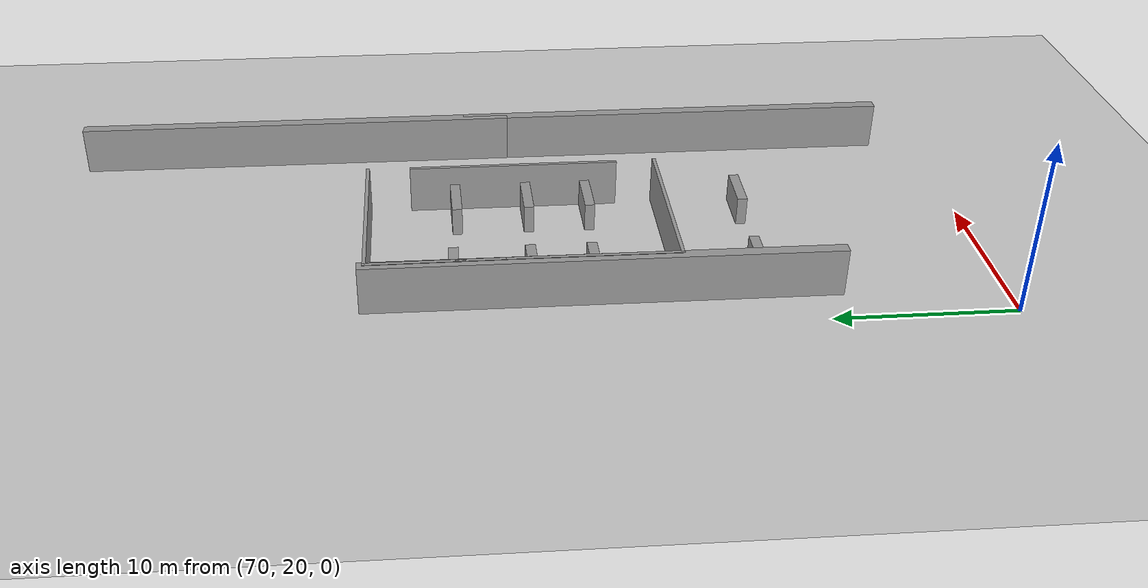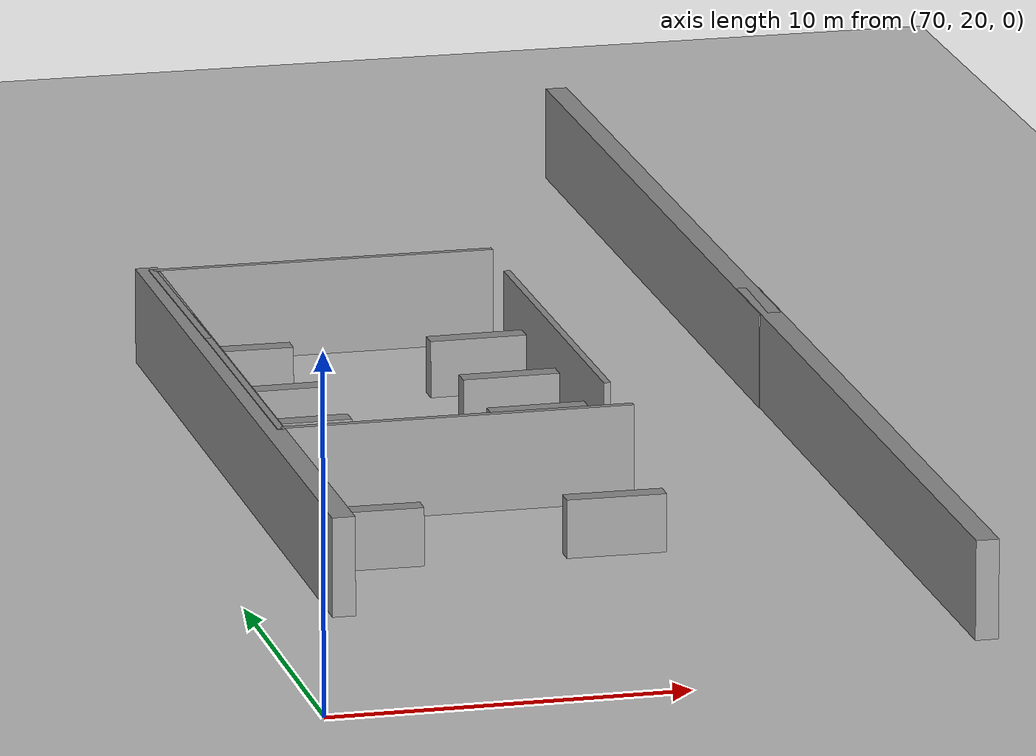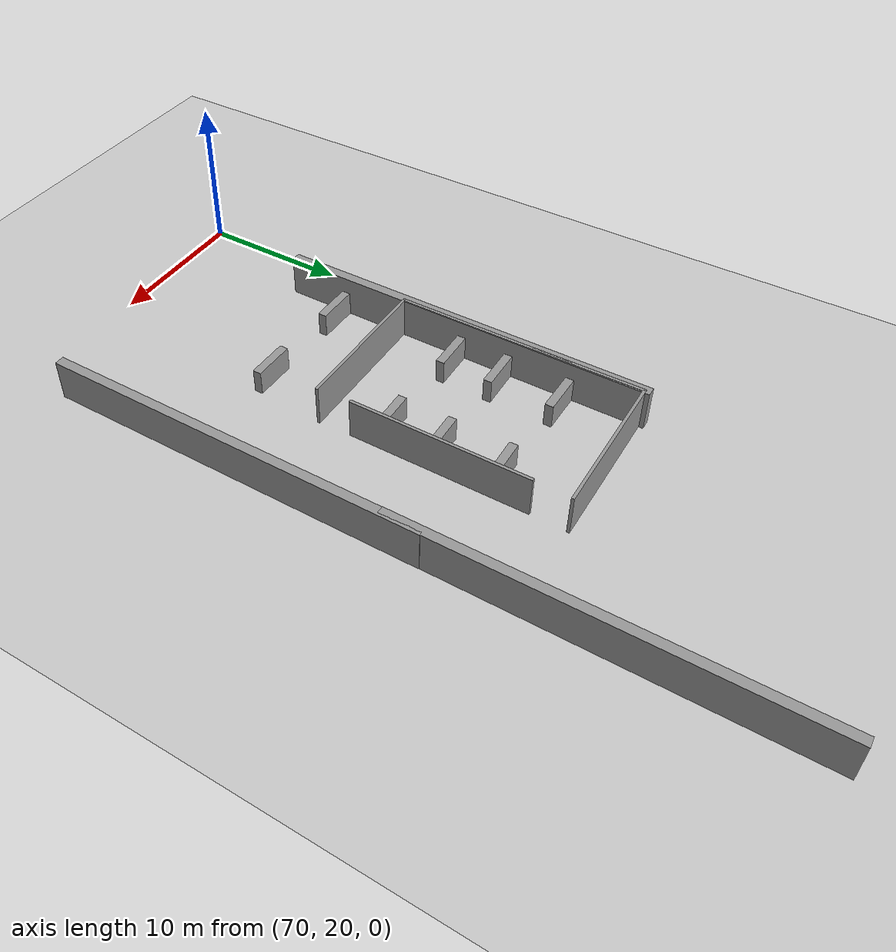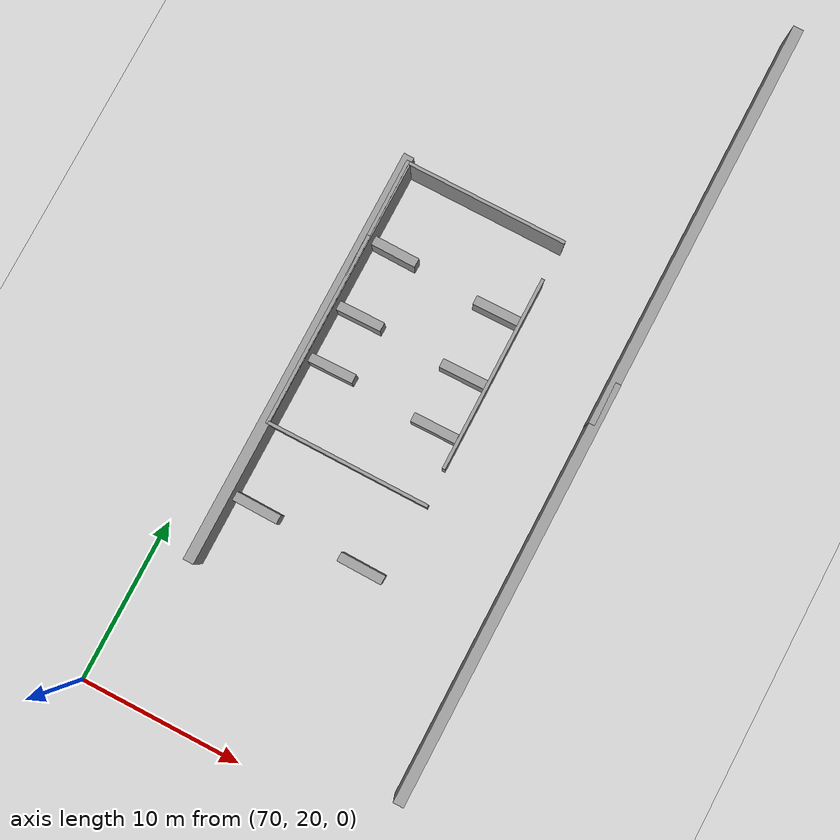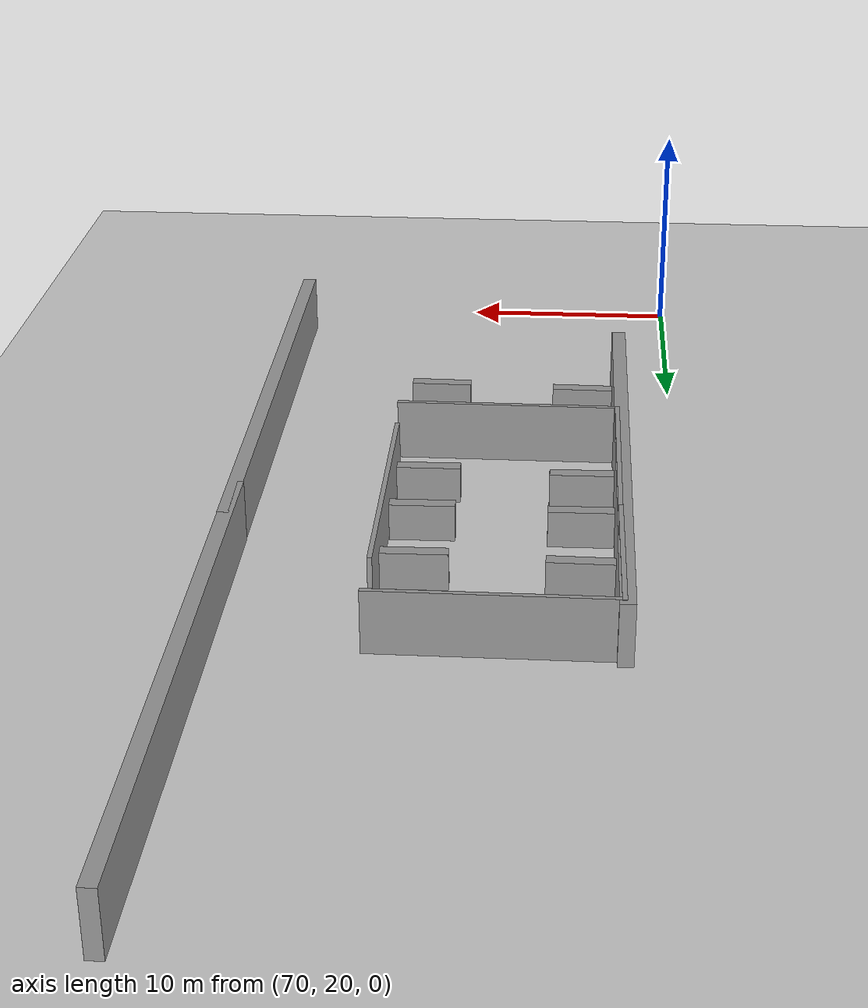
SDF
<sdf version="1.7">
 <world name="default">
  <model name="ground_plane">
   <static>1</static>
   <link name="link">
    <collision name="collision">
     <geometry><plane><normal>0 0 1</normal><size>100 100</size></plane></geometry>
     <surface><friction><ode><mu>100</mu><mu2>50</mu2></ode></friction></surface>
    </collision>
    <visual name="visual">
     <cast_shadows>0</cast_shadows>
     <geometry><plane><normal>0 0 1</normal><size>100 100</size></plane></geometry>
     <material>
      <script><uri>file://media/materials/scripts/gazebo.material</uri><name>Gazebo/Grey</name></script>
     </material>
    </visual>
   </link>
  </model>
  <model name="grew_wall_long_vertial_1_clone_clone_3">
   <model name="grey_wall_long">
    <link name="link">
     <pose>0 0 1.37589 0 -0 0</pose>
     <inertial>
      <inertia><ixx>0</ixx><ixy>0</ixy><ixz>0</ixz><iyy>0</iyy><iyz>0</iyz><izz>0</izz></inertia>
      <mass>0</mass>
     </inertial>
     <visual name="visual">
      <cast_shadows>0</cast_shadows>
      <geometry><box><size>25.8815 0.642976 2.8</size></box></geometry>
      <material>
       <script>
        <uri>model://grey_wall/materials/scripts</uri>
        <uri>model://grey_wall/materials/textures</uri>
        <name>vrc/grey_wall</name>
       </script>
       <shader type="pixel"><normal_map>__default__</normal_map></shader>
       <ambient>1 1 1 1</ambient>
       <diffuse>1 1 1 1</diffuse>
       <specular>0 0 0 1</specular>
       <emissive>0 0 0 1</emissive>
      </material>
     </visual>
     <collision name="collision">
      <geometry><box><size>25.8815 0.642976 2.8</size></box></geometry>
      <surface>
       <friction>
        <ode><mu>1</mu><mu2>1</mu2><fdir1>0 0 0</fdir1><slip1>0</slip1><slip2>0</slip2></ode>
        <torsional>
         <coefficient>1</coefficient>
         <patch_radius>0</patch_radius>
         <surface_radius>0</surface_radius>
         <use_patch_radius>1</use_patch_radius>
         <ode><slip>0</slip></ode>
        </torsional>
       </friction>
       <bounce><restitution_coefficient>0</restitution_coefficient><threshold>1e+06</threshold></bounce>
       <contact>
        <collide_without_contact>0</collide_without_contact>
        <collide_without_contact_bitmask>1</collide_without_contact_bitmask>
        <collide_bitmask>1</collide_bitmask>
        <ode>
         <soft_cfm>0</soft_cfm>
         <soft_erp>0.2</soft_erp>
         <kp>1e+13</kp>
         <kd>1</kd>
         <max_vel>0.01</max_vel>
         <min_depth>0</min_depth>
        </ode>
        <bullet>
         <split_impulse>1</split_impulse>
         <split_impulse_penetration_threshold>-0.01</split_impulse_penetration_threshold>
         <soft_cfm>0</soft_cfm>
         <soft_erp>0.2</soft_erp>
         <kp>1e+13</kp>
         <kd>1</kd>
        </bullet>
       </contact>
      </surface>
     </collision>
    </link>
    <static>1</static>
    <pose>1e-06 -0 0 0 -0 1.57003</pose>
   </model>
   <static>0</static>
   <pose>72.5178 41.7329 0 0 -0 0</pose>
  </model>
  <model name="jiaoshi_clone_clone_clone_0_clone">
   <model name="grey_wall">
    <static>1</static>
    <link name="link">
     <pose>0 0 1.4 0 -0 0</pose>
     <collision name="collision"><geometry><box><size>7.5 0.2 2.8</size></box></geometry></collision>
     <visual name="visual">
      <cast_shadows>0</cast_shadows>
      <geometry><box><size>7.5 0.2 2.8</size></box></geometry>
      <material>
       <script>
        <uri>model://grey_wall/materials/scripts</uri>
        <uri>model://grey_wall/materials/textures</uri>
        <name>vrc/grey_wall</name>
       </script>
      </material>
     </visual>
    </link>
    <pose>-3.38172 4.2623 0 0 0 -1.56473</pose>
   </model>
   <model name="grey_wall_10m">
    <link name="link">
     <pose>1.25079 -0.023082 1.4 0 -0 0</pose>
     <inertial>
      <inertia><ixx>0</ixx><ixy>0</ixy><ixz>0</ixz><iyy>0</iyy><iyz>0</iyz><izz>0</izz></inertia>
      <mass>0</mass>
     </inertial>
     <visual name="visual">
      <cast_shadows>0</cast_shadows>
      <geometry><box><size>10.0157 0.2 2.8</size></box></geometry>
      <material>
       <script>
        <uri>model://grey_wall/materials/scripts</uri>
        <uri>model://grey_wall/materials/textures</uri>
        <name>vrc/grey_wall</name>
       </script>
       <shader type="pixel"/>
       <ambient>1 1 1 1</ambient>
       <diffuse>1 1 1 1</diffuse>
       <specular>0 0 0 1</specular>
       <emissive>0 0 0 1</emissive>
      </material>
     </visual>
     <collision name="collision">
      <geometry><box><size>10.0157 0.2 2.8</size></box></geometry>
      <surface>
       <friction>
        <ode><mu>1</mu><mu2>1</mu2><fdir1>0 0 0</fdir1><slip1>0</slip1><slip2>0</slip2></ode>
        <torsional>
         <coefficient>1</coefficient>
         <patch_radius>0</patch_radius>
         <surface_radius>0</surface_radius>
         <use_patch_radius>1</use_patch_radius>
         <ode><slip>0</slip></ode>
        </torsional>
       </friction>
       <bounce><restitution_coefficient>0</restitution_coefficient><threshold>1e+06</threshold></bounce>
       <contact>
        <collide_without_contact>0</collide_without_contact>
        <collide_without_contact_bitmask>1</collide_without_contact_bitmask>
        <collide_bitmask>1</collide_bitmask>
        <ode>
         <soft_cfm>0</soft_cfm>
         <soft_erp>0.2</soft_erp>
         <kp>1e+13</kp>
         <kd>1</kd>
         <max_vel>0.01</max_vel>
         <min_depth>0</min_depth>
        </ode>
        <bullet>
         <split_impulse>1</split_impulse>
         <split_impulse_penetration_threshold>-0.01</split_impulse_penetration_threshold>
         <soft_cfm>0</soft_cfm>
         <soft_erp>0.2</soft_erp>
         <kp>1e+13</kp>
         <kd>1</kd>
        </bullet>
       </contact>
      </surface>
     </collision>
    </link>
    <static>1</static>
    <pose>0.433183 -8.77625 0 0 -0 0</pose>
   </model>
   <model name="grey_wall_10m_0">
    <link name="link">
     <pose>1.25079 -0.023082 1.4 0 -0 0</pose>
     <inertial>
      <inertia><ixx>0</ixx><ixy>0</ixy><ixz>0</ixz><iyy>0</iyy><iyz>0</iyz><izz>0</izz></inertia>
      <mass>0</mass>
     </inertial>
     <visual name="visual">
      <cast_shadows>0</cast_shadows>
      <geometry><box><size>10.0157 0.2 2.8</size></box></geometry>
      <material>
       <script>
        <uri>model://grey_wall/materials/scripts</uri>
        <uri>model://grey_wall/materials/textures</uri>
        <name>vrc/grey_wall</name>
       </script>
       <shader type="pixel"/>
       <ambient>1 1 1 1</ambient>
       <diffuse>1 1 1 1</diffuse>
       <specular>0 0 0 1</specular>
       <emissive>0 0 0 1</emissive>
      </material>
     </visual>
     <collision name="collision">
      <geometry><box><size>10.0157 0.2 2.8</size></box></geometry>
      <surface>
       <friction>
        <ode><mu>1</mu><mu2>1</mu2><fdir1>0 0 0</fdir1><slip1>0</slip1><slip2>0</slip2></ode>
        <torsional>
         <coefficient>1</coefficient>
         <patch_radius>0</patch_radius>
         <surface_radius>0</surface_radius>
         <use_patch_radius>1</use_patch_radius>
         <ode><slip>0</slip></ode>
        </torsional>
       </friction>
       <bounce><restitution_coefficient>0</restitution_coefficient><threshold>1e+06</threshold></bounce>
       <contact>
        <collide_without_contact>0</collide_without_contact>
        <collide_without_contact_bitmask>1</collide_without_contact_bitmask>
        <collide_bitmask>1</collide_bitmask>
        <ode>
         <soft_cfm>0</soft_cfm>
         <soft_erp>0.2</soft_erp>
         <kp>1e+13</kp>
         <kd>1</kd>
         <max_vel>0.01</max_vel>
         <min_depth>0</min_depth>
        </ode>
        <bullet>
         <split_impulse>1</split_impulse>
         <split_impulse_penetration_threshold>-0.01</split_impulse_penetration_threshold>
         <soft_cfm>0</soft_cfm>
         <soft_erp>0.2</soft_erp>
         <kp>1e+13</kp>
         <kd>1</kd>
        </bullet>
       </contact>
      </surface>
     </collision>
    </link>
    <static>1</static>
    <pose>0.377364 7.92573 0 0 -0 0</pose>
   </model>
   <model name="grey_wall_12m_vertial">
    <link name="link">
     <pose>0.289112 -0.003891 1.4 0 0 -1.5701</pose>
     <inertial>
      <inertia><ixx>0</ixx><ixy>0</ixy><ixz>0</ixz><iyy>0</iyy><iyz>0</iyz><izz>0</izz></inertia>
      <mass>0</mass>
     </inertial>
     <visual name="visual">
      <cast_shadows>0</cast_shadows>
      <geometry><box><size>12.0527 0.2 2.8</size></box></geometry>
      <material>
       <script>
        <uri>model://grey_wall/materials/scripts</uri>
        <uri>model://grey_wall/materials/textures</uri>
        <name>vrc/grey_wall</name>
       </script>
       <shader type="pixel"/>
       <ambient>1 1 1 1</ambient>
       <diffuse>1 1 1 1</diffuse>
       <specular>0 0 0 1</specular>
       <emissive>0 0 0 1</emissive>
      </material>
     </visual>
     <collision name="collision">
      <geometry><box><size>12.0527 0.2 2.8</size></box></geometry>
      <surface>
       <friction>
        <ode><mu>1</mu><mu2>1</mu2><fdir1>0 0 0</fdir1><slip1>0</slip1><slip2>0</slip2></ode>
        <torsional>
         <coefficient>1</coefficient>
         <patch_radius>0</patch_radius>
         <surface_radius>0</surface_radius>
         <use_patch_radius>1</use_patch_radius>
         <ode><slip>0</slip></ode>
        </torsional>
       </friction>
       <bounce><restitution_coefficient>0</restitution_coefficient><threshold>1e+06</threshold></bounce>
       <contact>
        <collide_without_contact>0</collide_without_contact>
        <collide_without_contact_bitmask>1</collide_without_contact_bitmask>
        <collide_bitmask>1</collide_bitmask>
        <ode>
         <soft_cfm>0</soft_cfm>
         <soft_erp>0.2</soft_erp>
         <kp>1e+13</kp>
         <kd>1</kd>
         <max_vel>0.01</max_vel>
         <min_depth>0</min_depth>
        </ode>
        <bullet>
         <split_impulse>1</split_impulse>
         <split_impulse_penetration_threshold>-0.01</split_impulse_penetration_threshold>
         <soft_cfm>0</soft_cfm>
         <soft_erp>0.2</soft_erp>
         <kp>1e+13</kp>
         <kd>1</kd>
        </bullet>
       </contact>
      </surface>
     </collision>
    </link>
    <static>1</static>
    <pose>-3.63668 -2.87268 0 0 -0 0</pose>
   </model>
   <model name="grey_wall_12m_vertial_0">
    <link name="link">
     <pose>0.289112 -0.003891 1.4 0 0 -1.5701</pose>
     <inertial>
      <inertia><ixx>0</ixx><ixy>0</ixy><ixz>0</ixz><iyy>0</iyy><iyz>0</iyz><izz>0</izz></inertia>
      <mass>0</mass>
     </inertial>
     <visual name="visual">
      <cast_shadows>0</cast_shadows>
      <geometry><box><size>12.0527 0.2 2.8</size></box></geometry>
      <material>
       <script>
        <uri>model://grey_wall/materials/scripts</uri>
        <uri>model://grey_wall/materials/textures</uri>
        <name>vrc/grey_wall</name>
       </script>
       <shader type="pixel"/>
       <ambient>1 1 1 1</ambient>
       <diffuse>1 1 1 1</diffuse>
       <specular>0 0 0 1</specular>
       <emissive>0 0 0 1</emissive>
      </material>
     </visual>
     <collision name="collision">
      <geometry><box><size>12.0527 0.2 2.8</size></box></geometry>
      <surface>
       <friction>
        <ode><mu>1</mu><mu2>1</mu2><fdir1>0 0 0</fdir1><slip1>0</slip1><slip2>0</slip2></ode>
        <torsional>
         <coefficient>1</coefficient>
         <patch_radius>0</patch_radius>
         <surface_radius>0</surface_radius>
         <use_patch_radius>1</use_patch_radius>
         <ode><slip>0</slip></ode>
        </torsional>
       </friction>
       <bounce><restitution_coefficient>0</restitution_coefficient><threshold>1e+06</threshold></bounce>
       <contact>
        <collide_without_contact>0</collide_without_contact>
        <collide_without_contact_bitmask>1</collide_without_contact_bitmask>
        <collide_bitmask>1</collide_bitmask>
        <ode>
         <soft_cfm>0</soft_cfm>
         <soft_erp>0.2</soft_erp>
         <kp>1e+13</kp>
         <kd>1</kd>
         <max_vel>0.01</max_vel>
         <min_depth>0</min_depth>
        </ode>
        <bullet>
         <split_impulse>1</split_impulse>
         <split_impulse_penetration_threshold>-0.01</split_impulse_penetration_threshold>
         <soft_cfm>0</soft_cfm>
         <soft_erp>0.2</soft_erp>
         <kp>1e+13</kp>
         <kd>1</kd>
        </bullet>
       </contact>
      </surface>
     </collision>
    </link>
    <static>1</static>
    <pose>6.20786 -0.539083 0 0 -0 0</pose>
   </model>
   <static>0</static>
   <pose>76.0453 46.3831 0 0 -0 0</pose>
  </model>
  <model name="grew_wall_long_vertial_1_clone_clone_1_clone_0">
   <model name="grey_wall_long">
    <link name="link">
     <pose>0 0 1.37589 0 -0 0</pose>
     <inertial>
      <inertia><ixx>0</ixx><ixy>0</ixy><ixz>0</ixz><iyy>0</iyy><iyz>0</iyz><izz>0</izz></inertia>
      <mass>0</mass>
     </inertial>
     <visual name="visual">
      <cast_shadows>0</cast_shadows>
      <geometry><box><size>25.8815 0.642976 2.8</size></box></geometry>
      <material>
       <script>
        <uri>model://grey_wall/materials/scripts</uri>
        <uri>model://grey_wall/materials/textures</uri>
        <name>vrc/grey_wall</name>
       </script>
       <shader type="pixel"><normal_map>__default__</normal_map></shader>
       <ambient>1 1 1 1</ambient>
       <diffuse>1 1 1 1</diffuse>
       <specular>0 0 0 1</specular>
       <emissive>0 0 0 1</emissive>
      </material>
     </visual>
     <collision name="collision">
      <geometry><box><size>25.8815 0.642976 2.8</size></box></geometry>
      <surface>
       <friction>
        <ode><mu>1</mu><mu2>1</mu2><fdir1>0 0 0</fdir1><slip1>0</slip1><slip2>0</slip2></ode>
        <torsional>
         <coefficient>1</coefficient>
         <patch_radius>0</patch_radius>
         <surface_radius>0</surface_radius>
         <use_patch_radius>1</use_patch_radius>
         <ode><slip>0</slip></ode>
        </torsional>
       </friction>
       <bounce><restitution_coefficient>0</restitution_coefficient><threshold>1e+06</threshold></bounce>
       <contact>
        <collide_without_contact>0</collide_without_contact>
        <collide_without_contact_bitmask>1</collide_without_contact_bitmask>
        <collide_bitmask>1</collide_bitmask>
        <ode>
         <soft_cfm>0</soft_cfm>
         <soft_erp>0.2</soft_erp>
         <kp>1e+13</kp>
         <kd>1</kd>
         <max_vel>0.01</max_vel>
         <min_depth>0</min_depth>
        </ode>
        <bullet>
         <split_impulse>1</split_impulse>
         <split_impulse_penetration_threshold>-0.01</split_impulse_penetration_threshold>
         <soft_cfm>0</soft_cfm>
         <soft_erp>0.2</soft_erp>
         <kp>1e+13</kp>
         <kd>1</kd>
        </bullet>
       </contact>
      </surface>
     </collision>
    </link>
    <static>1</static>
    <pose>1e-06 -0 0 0 -0 1.57003</pose>
   </model>
   <static>0</static>
   <pose>88.8179 35.6019 0 0 -0 0</pose>
  </model>
  <model name="grew_wall_long_vertial_1_clone_clone_1_clone_1">
   <model name="grey_wall_long">
    <link name="link">
     <pose>0 0 1.37589 0 -0 0</pose>
     <inertial>
      <inertia><ixx>0</ixx><ixy>0</ixy><ixz>0</ixz><iyy>0</iyy><iyz>0</iyz><izz>0</izz></inertia>
      <mass>0</mass>
     </inertial>
     <visual name="visual">
      <cast_shadows>0</cast_shadows>
      <geometry><box><size>25.8815 0.642976 2.8</size></box></geometry>
      <material>
       <script>
        <uri>model://grey_wall/materials/scripts</uri>
        <uri>model://grey_wall/materials/textures</uri>
        <name>vrc/grey_wall</name>
       </script>
       <shader type="pixel"><normal_map>__default__</normal_map></shader>
       <ambient>1 1 1 1</ambient>
       <diffuse>1 1 1 1</diffuse>
       <specular>0 0 0 1</specular>
       <emissive>0 0 0 1</emissive>
      </material>
     </visual>
     <collision name="collision">
      <geometry><box><size>25.8815 0.642976 2.8</size></box></geometry>
      <surface>
       <friction>
        <ode><mu>1</mu><mu2>1</mu2><fdir1>0 0 0</fdir1><slip1>0</slip1><slip2>0</slip2></ode>
        <torsional>
         <coefficient>1</coefficient>
         <patch_radius>0</patch_radius>
         <surface_radius>0</surface_radius>
         <use_patch_radius>1</use_patch_radius>
         <ode><slip>0</slip></ode>
        </torsional>
       </friction>
       <bounce><restitution_coefficient>0</restitution_coefficient><threshold>1e+06</threshold></bounce>
       <contact>
        <collide_without_contact>0</collide_without_contact>
        <collide_without_contact_bitmask>1</collide_without_contact_bitmask>
        <collide_bitmask>1</collide_bitmask>
        <ode>
         <soft_cfm>0</soft_cfm>
         <soft_erp>0.2</soft_erp>
         <kp>1e+13</kp>
         <kd>1</kd>
         <max_vel>0.01</max_vel>
         <min_depth>0</min_depth>
        </ode>
        <bullet>
         <split_impulse>1</split_impulse>
         <split_impulse_penetration_threshold>-0.01</split_impulse_penetration_threshold>
         <soft_cfm>0</soft_cfm>
         <soft_erp>0.2</soft_erp>
         <kp>1e+13</kp>
         <kd>1</kd>
        </bullet>
       </contact>
      </surface>
     </collision>
    </link>
    <static>1</static>
    <pose>1e-06 -0 0 0 -0 1.57003</pose>
   </model>
   <static>0</static>
   <pose>88.8126 58.7743 0 0 -0 0</pose>
  </model>
  <model name="unit_box_clone_34">
   <pose>74.2755 49.6021 0.834396 -0 3.2e-05 -0.013952</pose>
   <link name="link">
    <inertial>
     <mass>1</mass>
     <inertia>
      <ixx>0.166667</ixx>
      <ixy>0</ixy>
      <ixz>0</ixz>
      <iyy>0.166667</iyy>
      <iyz>0</iyz>
      <izz>0.166667</izz>
     </inertia>
    </inertial>
    <collision name="collision"><geometry><box><size>2.81196 0.562598 1.66888</size></box></geometry></collision>
    <visual name="visual">
     <geometry><box><size>2.81196 0.562598 1.66888</size></box></geometry>
     <material>
      <script><name>Gazebo/Grey</name><uri>file://media/materials/scripts/gazebo.material</uri></script>
     </material>
    </visual>
   </link>
  </model>
  <model name="unit_box_clone_35">
   <pose>81.0178 49.2604 0.834396 0 3.2e-05 0.013794</pose>
   <link name="link">
    <inertial>
     <mass>1</mass>
     <inertia>
      <ixx>0.166667</ixx>
      <ixy>0</ixy>
      <ixz>0</ixz>
      <iyy>0.166667</iyy>
      <iyz>0</iyz>
      <izz>0.166667</izz>
     </inertia>
    </inertial>
    <collision name="collision"><geometry><box><size>2.81196 0.562598 1.66888</size></box></geometry></collision>
    <visual name="visual">
     <geometry><box><size>2.81196 0.562598 1.66888</size></box></geometry>
     <material>
      <script><name>Gazebo/Grey</name><uri>file://media/materials/scripts/gazebo.material</uri></script>
     </material>
    </visual>
   </link>
  </model>
  <model name="unit_box_clone_36">
   <pose>74.2739 45.3762 0.834396 0 3.2e-05 0.013199</pose>
   <link name="link">
    <inertial>
     <mass>1</mass>
     <inertia>
      <ixx>0.166667</ixx>
      <ixy>0</ixy>
      <ixz>0</ixz>
      <iyy>0.166667</iyy>
      <iyz>0</iyz>
      <izz>0.166667</izz>
     </inertia>
    </inertial>
    <collision name="collision"><geometry><box><size>2.81196 0.562598 1.66888</size></box></geometry></collision>
    <visual name="visual">
     <geometry><box><size>2.81196 0.562598 1.66888</size></box></geometry>
     <material>
      <script><name>Gazebo/Grey</name><uri>file://media/materials/scripts/gazebo.material</uri></script>
     </material>
    </visual>
   </link>
  </model>
  <model name="unit_box_clone_37">
   <pose>81.0094 45.1725 0.834396 -0 -3.2e-05 0.013009</pose>
   <link name="link">
    <inertial>
     <mass>1</mass>
     <inertia>
      <ixx>0.166667</ixx>
      <ixy>0</ixy>
      <ixz>0</ixz>
      <iyy>0.166667</iyy>
      <iyz>0</iyz>
      <izz>0.166667</izz>
     </inertia>
    </inertial>
    <collision name="collision"><geometry><box><size>2.81196 0.562598 1.66888</size></box></geometry></collision>
    <visual name="visual">
     <geometry><box><size>2.81196 0.562598 1.66888</size></box></geometry>
     <material>
      <script><name>Gazebo/Grey</name><uri>file://media/materials/scripts/gazebo.material</uri></script>
     </material>
    </visual>
   </link>
  </model>
  <model name="unit_box_clone_38">
   <pose>74.2607 42.0046 0.834396 -0 -3.2e-05 0.012883</pose>
   <link name="link">
    <inertial>
     <mass>1</mass>
     <inertia>
      <ixx>0.166667</ixx>
      <ixy>0</ixy>
      <ixz>0</ixz>
      <iyy>0.166667</iyy>
      <iyz>0</iyz>
      <izz>0.166667</izz>
     </inertia>
    </inertial>
    <collision name="collision"><geometry><box><size>2.81196 0.562598 1.66888</size></box></geometry></collision>
    <visual name="visual">
     <geometry><box><size>2.81196 0.562598 1.66888</size></box></geometry>
     <material>
      <script><name>Gazebo/Grey</name><uri>file://media/materials/scripts/gazebo.material</uri></script>
     </material>
    </visual>
   </link>
  </model>
  <model name="unit_box_clone_39">
   <pose>80.9969 41.6897 0.834396 -0 -3.2e-05 0.013141</pose>
   <link name="link">
    <inertial>
     <mass>1</mass>
     <inertia>
      <ixx>0.166667</ixx>
      <ixy>0</ixy>
      <ixz>0</ixz>
      <iyy>0.166667</iyy>
      <iyz>0</iyz>
      <izz>0.166667</izz>
     </inertia>
    </inertial>
    <collision name="collision"><geometry><box><size>2.81196 0.562598 1.66888</size></box></geometry></collision>
    <visual name="visual">
     <geometry><box><size>2.81196 0.562598 1.66888</size></box></geometry>
     <material>
      <script><name>Gazebo/Grey</name><uri>file://media/materials/scripts/gazebo.material</uri></script>
     </material>
    </visual>
   </link>
  </model>
  <model name="unit_box_clone_40">
   <pose>74.2607 33.0948 0.834396 -0 3.2e-05 -0.012958</pose>
   <link name="link">
    <inertial>
     <mass>1</mass>
     <inertia>
      <ixx>0.166667</ixx>
      <ixy>0</ixy>
      <ixz>0</ixz>
      <iyy>0.166667</iyy>
      <iyz>0</iyz>
      <izz>0.166667</izz>
     </inertia>
    </inertial>
    <collision name="collision"><geometry><box><size>2.81196 0.562598 1.66888</size></box></geometry></collision>
    <visual name="visual">
     <geometry><box><size>2.81196 0.562598 1.66888</size></box></geometry>
     <material>
      <script><name>Gazebo/Grey</name><uri>file://media/materials/scripts/gazebo.material</uri></script>
     </material>
    </visual>
   </link>
  </model>
  <model name="unit_box_clone_41">
   <pose>81.0281 32.8381 0.834396 -0 -3.2e-05 -0.013563</pose>
   <link name="link">
    <inertial>
     <mass>1</mass>
     <inertia>
      <ixx>0.166667</ixx>
      <ixy>0</ixy>
      <ixz>0</ixz>
      <iyy>0.166667</iyy>
      <iyz>0</iyz>
      <izz>0.166667</izz>
     </inertia>
    </inertial>
    <collision name="collision"><geometry><box><size>2.81196 0.562598 1.66888</size></box></geometry></collision>
    <visual name="visual">
     <geometry><box><size>2.81196 0.562598 1.66888</size></box></geometry>
     <material>
      <script><name>Gazebo/Grey</name><uri>file://media/materials/scripts/gazebo.material</uri></script>
     </material>
    </visual>
   </link>
  </model>
 </world>
</sdf>
